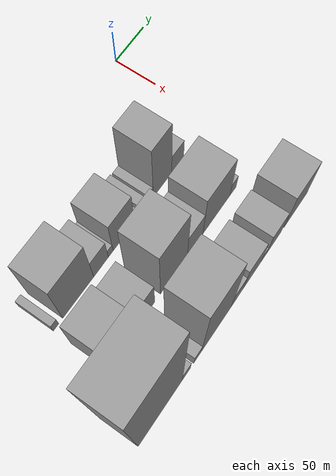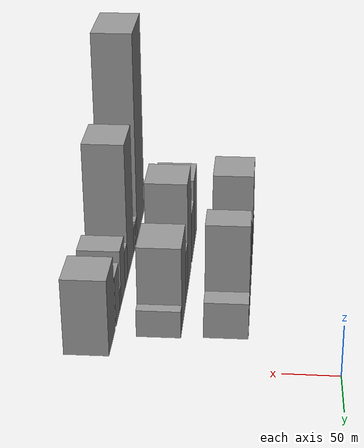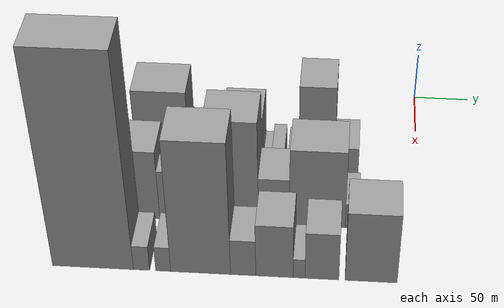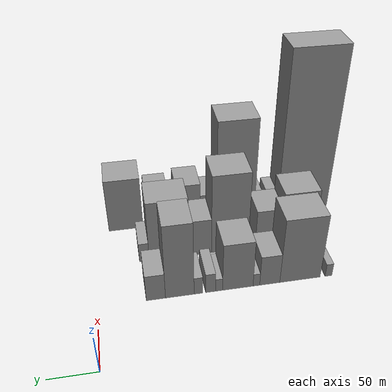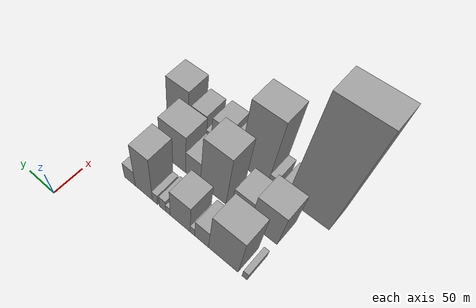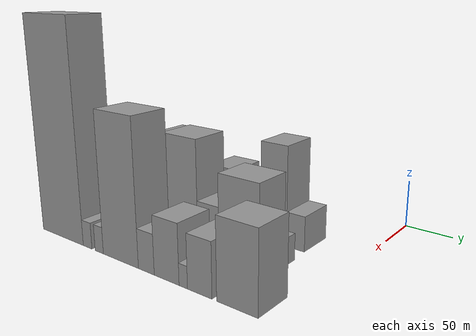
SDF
<sdf version="1.6">
 <world name="default">
  <model name="building_11">
   <static>1</static>
   <pose>100.0000 -257.0660 0 0.000000 0.000000 0.000000</pose>
   <link name="link">
    <pose>0 0 9.00 0 0 0</pose>
    <collision name="collision"><geometry><box><size>40.0000 8.0128 18.0000</size></box></geometry></collision>
    <visual name="visual">
     <cast_shadows>0</cast_shadows>
     <geometry><box><size>40.0000 8.0128 18.0000</size></box></geometry>
     <material>
      <script>
       <uri>model://grey_wall/materials/scripts</uri>
       <uri>model://grey_wall/materials/textures</uri>
       <name>vrc/grey_wall</name>
      </script>
     </material>
    </visual>
   </link>
  </model>
  <model name="building_12">
   <static>1</static>
   <pose>100.0000 -223.5987 0 0.000000 0.000000 0.000000</pose>
   <link name="link">
    <pose>0 0 45.00 0 0 0</pose>
    <collision name="collision"><geometry><box><size>40.0000 46.9219 90.0000</size></box></geometry></collision>
    <visual name="visual">
     <cast_shadows>0</cast_shadows>
     <geometry><box><size>40.0000 46.9219 90.0000</size></box></geometry>
     <material>
      <script>
       <uri>model://grey_wall/materials/scripts</uri>
       <uri>model://grey_wall/materials/textures</uri>
       <name>vrc/grey_wall</name>
      </script>
     </material>
    </visual>
   </link>
  </model>
  <model name="building_13">
   <static>1</static>
   <pose>100.0000 -188.6355 0 0.000000 0.000000 0.000000</pose>
   <link name="link">
    <pose>0 0 21.00 0 0 0</pose>
    <collision name="collision"><geometry><box><size>40.0000 23.0045 42.0000</size></box></geometry></collision>
    <visual name="visual">
     <cast_shadows>0</cast_shadows>
     <geometry><box><size>40.0000 23.0045 42.0000</size></box></geometry>
     <material>
      <script>
       <uri>model://grey_wall/materials/scripts</uri>
       <uri>model://grey_wall/materials/textures</uri>
       <name>vrc/grey_wall</name>
      </script>
     </material>
    </visual>
   </link>
  </model>
  <model name="building_14">
   <static>1</static>
   <pose>100.0000 -173.3372 0 0.000000 0.000000 0.000000</pose>
   <link name="link">
    <pose>0 0 9.00 0 0 0</pose>
    <collision name="collision"><geometry><box><size>40.0000 7.5920 18.0000</size></box></geometry></collision>
    <visual name="visual">
     <cast_shadows>0</cast_shadows>
     <geometry><box><size>40.0000 7.5920 18.0000</size></box></geometry>
     <material>
      <script>
       <uri>model://grey_wall/materials/scripts</uri>
       <uri>model://grey_wall/materials/textures</uri>
       <name>vrc/grey_wall</name>
      </script>
     </material>
    </visual>
   </link>
  </model>
  <model name="building_15">
   <static>1</static>
   <pose>100.0000 -152.3897 0 0.000000 0.000000 0.000000</pose>
   <link name="link">
    <pose>0 0 33.00 0 0 0</pose>
    <collision name="collision"><geometry><box><size>40.0000 34.3029 66.0000</size></box></geometry></collision>
    <visual name="visual">
     <cast_shadows>0</cast_shadows>
     <geometry><box><size>40.0000 34.3029 66.0000</size></box></geometry>
     <material>
      <script>
       <uri>model://grey_wall/materials/scripts</uri>
       <uri>model://grey_wall/materials/textures</uri>
       <name>vrc/grey_wall</name>
      </script>
     </material>
    </visual>
   </link>
  </model>
  <model name="building_16">
   <static>1</static>
   <pose>100.0000 -131.3970 0 0.000000 0.000000 0.000000</pose>
   <link name="link">
    <pose>0 0 9.00 0 0 0</pose>
    <collision name="collision"><geometry><box><size>40.0000 7.6826 18.0000</size></box></geometry></collision>
    <visual name="visual">
     <cast_shadows>0</cast_shadows>
     <geometry><box><size>40.0000 7.6826 18.0000</size></box></geometry>
     <material>
      <script>
       <uri>model://grey_wall/materials/scripts</uri>
       <uri>model://grey_wall/materials/textures</uri>
       <name>vrc/grey_wall</name>
      </script>
     </material>
    </visual>
   </link>
  </model>
  <model name="building_17">
   <static>1</static>
   <pose>100.0000 -121.9993 0 0.000000 0.000000 0.000000</pose>
   <link name="link">
    <pose>0 0 13.50 0 0 0</pose>
    <collision name="collision"><geometry><box><size>40.0000 11.1128 27.0000</size></box></geometry></collision>
    <visual name="visual">
     <cast_shadows>0</cast_shadows>
     <geometry><box><size>40.0000 11.1128 27.0000</size></box></geometry>
     <material>
      <script>
       <uri>model://grey_wall/materials/scripts</uri>
       <uri>model://grey_wall/materials/textures</uri>
       <name>vrc/grey_wall</name>
      </script>
     </material>
    </visual>
   </link>
  </model>
  <model name="building_18">
   <static>1</static>
   <pose>100.0000 -108.5915 0 0.000000 0.000000 0.000000</pose>
   <link name="link">
    <pose>0 0 12.00 0 0 0</pose>
    <collision name="collision"><geometry><box><size>40.0000 9.7029 24.0000</size></box></geometry></collision>
    <visual name="visual">
     <cast_shadows>0</cast_shadows>
     <geometry><box><size>40.0000 9.7029 24.0000</size></box></geometry>
     <material>
      <script>
       <uri>model://grey_wall/materials/scripts</uri>
       <uri>model://grey_wall/materials/textures</uri>
       <name>vrc/grey_wall</name>
      </script>
     </material>
    </visual>
   </link>
  </model>
  <model name="building_19">
   <static>1</static>
   <pose>100.0000 -88.0765 0 0.000000 0.000000 0.000000</pose>
   <link name="link">
    <pose>0 0 51.00 0 0 0</pose>
    <collision name="collision"><geometry><box><size>40.0000 31.3270 102.0000</size></box></geometry></collision>
    <visual name="visual">
     <cast_shadows>0</cast_shadows>
     <geometry><box><size>40.0000 31.3270 102.0000</size></box></geometry>
     <material>
      <script>
       <uri>model://grey_wall/materials/scripts</uri>
       <uri>model://grey_wall/materials/textures</uri>
       <name>vrc/grey_wall</name>
      </script>
     </material>
    </visual>
   </link>
  </model>
  <model name="building_20">
   <static>1</static>
   <pose>100.0000 -62.0371 0 0.000000 0.000000 0.000000</pose>
   <link name="link">
    <pose>0 0 18.00 0 0 0</pose>
    <collision name="collision"><geometry><box><size>40.0000 20.7519 36.0000</size></box></geometry></collision>
    <visual name="visual">
     <cast_shadows>0</cast_shadows>
     <geometry><box><size>40.0000 20.7519 36.0000</size></box></geometry>
     <material>
      <script>
       <uri>model://grey_wall/materials/scripts</uri>
       <uri>model://grey_wall/materials/textures</uri>
       <name>vrc/grey_wall</name>
      </script>
     </material>
    </visual>
   </link>
  </model>
  <model name="building_44">
   <static>1</static>
   <pose>160.0000 -239.8060 0 0.000000 0.000000 0.000000</pose>
   <link name="link">
    <pose>0 0 37.50 0 0 0</pose>
    <collision name="collision"><geometry><box><size>40.0000 42.3719 75.0000</size></box></geometry></collision>
    <visual name="visual">
     <cast_shadows>0</cast_shadows>
     <geometry><box><size>40.0000 42.3719 75.0000</size></box></geometry>
     <material>
      <script>
       <uri>model://grey_wall/materials/scripts</uri>
       <uri>model://grey_wall/materials/textures</uri>
       <name>vrc/grey_wall</name>
      </script>
     </material>
    </visual>
   </link>
  </model>
  <model name="building_45">
   <static>1</static>
   <pose>160.0000 -203.0431 0 0.000000 0.000000 0.000000</pose>
   <link name="link">
    <pose>0 0 27.00 0 0 0</pose>
    <collision name="collision"><geometry><box><size>40.0000 31.1538 54.0000</size></box></geometry></collision>
    <visual name="visual">
     <cast_shadows>0</cast_shadows>
     <geometry><box><size>40.0000 31.1538 54.0000</size></box></geometry>
     <material>
      <script>
       <uri>model://grey_wall/materials/scripts</uri>
       <uri>model://grey_wall/materials/textures</uri>
       <name>vrc/grey_wall</name>
      </script>
     </material>
    </visual>
   </link>
  </model>
  <model name="building_46">
   <static>1</static>
   <pose>160.0000 -156.4165 0 0.000000 0.000000 0.000000</pose>
   <link name="link">
    <pose>0 0 55.50 0 0 0</pose>
    <collision name="collision"><geometry><box><size>40.0000 44.0994 111.0000</size></box></geometry></collision>
    <visual name="visual">
     <cast_shadows>0</cast_shadows>
     <geometry><box><size>40.0000 44.0994 111.0000</size></box></geometry>
     <material>
      <script>
       <uri>model://grey_wall/materials/scripts</uri>
       <uri>model://grey_wall/materials/textures</uri>
       <name>vrc/grey_wall</name>
      </script>
     </material>
    </visual>
   </link>
  </model>
  <model name="building_47">
   <static>1</static>
   <pose>160.0000 -121.1956 0 0.000000 0.000000 0.000000</pose>
   <link name="link">
    <pose>0 0 25.50 0 0 0</pose>
    <collision name="collision"><geometry><box><size>40.0000 26.3425 51.0000</size></box></geometry></collision>
    <visual name="visual">
     <cast_shadows>0</cast_shadows>
     <geometry><box><size>40.0000 26.3425 51.0000</size></box></geometry>
     <material>
      <script>
       <uri>model://grey_wall/materials/scripts</uri>
       <uri>model://grey_wall/materials/textures</uri>
       <name>vrc/grey_wall</name>
      </script>
     </material>
    </visual>
   </link>
  </model>
  <model name="building_48">
   <static>1</static>
   <pose>160.0000 -84.4922 0 0.000000 0.000000 0.000000</pose>
   <link name="link">
    <pose>0 0 42.00 0 0 0</pose>
    <collision name="collision"><geometry><box><size>40.0000 47.0642 84.0000</size></box></geometry></collision>
    <visual name="visual">
     <cast_shadows>0</cast_shadows>
     <geometry><box><size>40.0000 47.0642 84.0000</size></box></geometry>
     <material>
      <script>
       <uri>model://grey_wall/materials/scripts</uri>
       <uri>model://grey_wall/materials/textures</uri>
       <name>vrc/grey_wall</name>
      </script>
     </material>
    </visual>
   </link>
  </model>
  <model name="building_49">
   <static>1</static>
   <pose>160.0000 -55.3131 0 0.000000 0.000000 0.000000</pose>
   <link name="link">
    <pose>0 0 13.50 0 0 0</pose>
    <collision name="collision"><geometry><box><size>40.0000 11.2942 27.0000</size></box></geometry></collision>
    <visual name="visual">
     <cast_shadows>0</cast_shadows>
     <geometry><box><size>40.0000 11.2942 27.0000</size></box></geometry>
     <material>
      <script>
       <uri>model://grey_wall/materials/scripts</uri>
       <uri>model://grey_wall/materials/textures</uri>
       <name>vrc/grey_wall</name>
      </script>
     </material>
    </visual>
   </link>
  </model>
  <model name="building_74">
   <static>1</static>
   <pose>220.0000 -265.0286 0 0.000000 0.000000 0.000000</pose>
   <link name="link">
    <pose>0 0 111.00 0 0 0</pose>
    <collision name="collision"><geometry><box><size>40.0000 66.6296 222.0000</size></box></geometry></collision>
    <visual name="visual">
     <cast_shadows>0</cast_shadows>
     <geometry><box><size>40.0000 66.6296 222.0000</size></box></geometry>
     <material>
      <script>
       <uri>model://grey_wall/materials/scripts</uri>
       <uri>model://grey_wall/materials/textures</uri>
       <name>vrc/grey_wall</name>
      </script>
     </material>
    </visual>
   </link>
  </model>
  <model name="building_75">
   <static>1</static>
   <pose>220.0000 -225.0602 0 0.000000 0.000000 0.000000</pose>
   <link name="link">
    <pose>0 0 13.50 0 0 0</pose>
    <collision name="collision"><geometry><box><size>40.0000 13.3073 27.0000</size></box></geometry></collision>
    <visual name="visual">
     <cast_shadows>0</cast_shadows>
     <geometry><box><size>40.0000 13.3073 27.0000</size></box></geometry>
     <material>
      <script>
       <uri>model://grey_wall/materials/scripts</uri>
       <uri>model://grey_wall/materials/textures</uri>
       <name>vrc/grey_wall</name>
      </script>
     </material>
    </visual>
   </link>
  </model>
  <model name="building_76">
   <static>1</static>
   <pose>220.0000 -207.2946 0 0.000000 0.000000 0.000000</pose>
   <link name="link">
    <pose>0 0 13.50 0 0 0</pose>
    <collision name="collision"><geometry><box><size>40.0000 12.2238 27.0000</size></box></geometry></collision>
    <visual name="visual">
     <cast_shadows>0</cast_shadows>
     <geometry><box><size>40.0000 12.2238 27.0000</size></box></geometry>
     <material>
      <script>
       <uri>model://grey_wall/materials/scripts</uri>
       <uri>model://grey_wall/materials/textures</uri>
       <name>vrc/grey_wall</name>
      </script>
     </material>
    </visual>
   </link>
  </model>
  <model name="building_77">
   <static>1</static>
   <pose>220.0000 -176.6967 0 0.000000 0.000000 0.000000</pose>
   <link name="link">
    <pose>0 0 70.50 0 0 0</pose>
    <collision name="collision"><geometry><box><size>40.0000 48.9720 141.0000</size></box></geometry></collision>
    <visual name="visual">
     <cast_shadows>0</cast_shadows>
     <geometry><box><size>40.0000 48.9720 141.0000</size></box></geometry>
     <material>
      <script>
       <uri>model://grey_wall/materials/scripts</uri>
       <uri>model://grey_wall/materials/textures</uri>
       <name>vrc/grey_wall</name>
      </script>
     </material>
    </visual>
   </link>
  </model>
  <model name="building_78">
   <static>1</static>
   <pose>220.0000 -141.9486 0 0.000000 0.000000 0.000000</pose>
   <link name="link">
    <pose>0 0 19.50 0 0 0</pose>
    <collision name="collision"><geometry><box><size>40.0000 20.5241 39.0000</size></box></geometry></collision>
    <visual name="visual">
     <cast_shadows>0</cast_shadows>
     <geometry><box><size>40.0000 20.5241 39.0000</size></box></geometry>
     <material>
      <script>
       <uri>model://grey_wall/materials/scripts</uri>
       <uri>model://grey_wall/materials/textures</uri>
       <name>vrc/grey_wall</name>
      </script>
     </material>
    </visual>
   </link>
  </model>
  <model name="building_79">
   <static>1</static>
   <pose>220.0000 -116.5460 0 0.000000 0.000000 0.000000</pose>
   <link name="link">
    <pose>0 0 28.50 0 0 0</pose>
    <collision name="collision"><geometry><box><size>40.0000 30.2813 57.0000</size></box></geometry></collision>
    <visual name="visual">
     <cast_shadows>0</cast_shadows>
     <geometry><box><size>40.0000 30.2813 57.0000</size></box></geometry>
     <material>
      <script>
       <uri>model://grey_wall/materials/scripts</uri>
       <uri>model://grey_wall/materials/textures</uri>
       <name>vrc/grey_wall</name>
      </script>
     </material>
    </visual>
   </link>
  </model>
  <model name="building_80">
   <static>1</static>
   <pose>220.0000 -96.5317 0 0.000000 0.000000 0.000000</pose>
   <link name="link">
    <pose>0 0 10.50 0 0 0</pose>
    <collision name="collision"><geometry><box><size>40.0000 9.7473 21.0000</size></box></geometry></collision>
    <visual name="visual">
     <cast_shadows>0</cast_shadows>
     <geometry><box><size>40.0000 9.7473 21.0000</size></box></geometry>
     <material>
      <script>
       <uri>model://grey_wall/materials/scripts</uri>
       <uri>model://grey_wall/materials/textures</uri>
       <name>vrc/grey_wall</name>
      </script>
     </material>
    </visual>
   </link>
  </model>
  <model name="building_81">
   <static>1</static>
   <pose>220.0000 -77.9969 0 0.000000 0.000000 0.000000</pose>
   <link name="link">
    <pose>0 0 25.50 0 0 0</pose>
    <collision name="collision"><geometry><box><size>40.0000 27.3222 51.0000</size></box></geometry></collision>
    <visual name="visual">
     <cast_shadows>0</cast_shadows>
     <geometry><box><size>40.0000 27.3222 51.0000</size></box></geometry>
     <material>
      <script>
       <uri>model://grey_wall/materials/scripts</uri>
       <uri>model://grey_wall/materials/textures</uri>
       <name>vrc/grey_wall</name>
      </script>
     </material>
    </visual>
   </link>
  </model>
  <model name="building_82">
   <static>1</static>
   <pose>220.0000 -38.3323 0 0.000000 0.000000 0.000000</pose>
   <link name="link">
    <pose>0 0 37.50 0 0 0</pose>
    <collision name="collision"><geometry><box><size>40.0000 42.0070 75.0000</size></box></geometry></collision>
    <visual name="visual">
     <cast_shadows>0</cast_shadows>
     <geometry><box><size>40.0000 42.0070 75.0000</size></box></geometry>
     <material>
      <script>
       <uri>model://grey_wall/materials/scripts</uri>
       <uri>model://grey_wall/materials/textures</uri>
       <name>vrc/grey_wall</name>
      </script>
     </material>
    </visual>
   </link>
  </model>
 </world>
</sdf>
